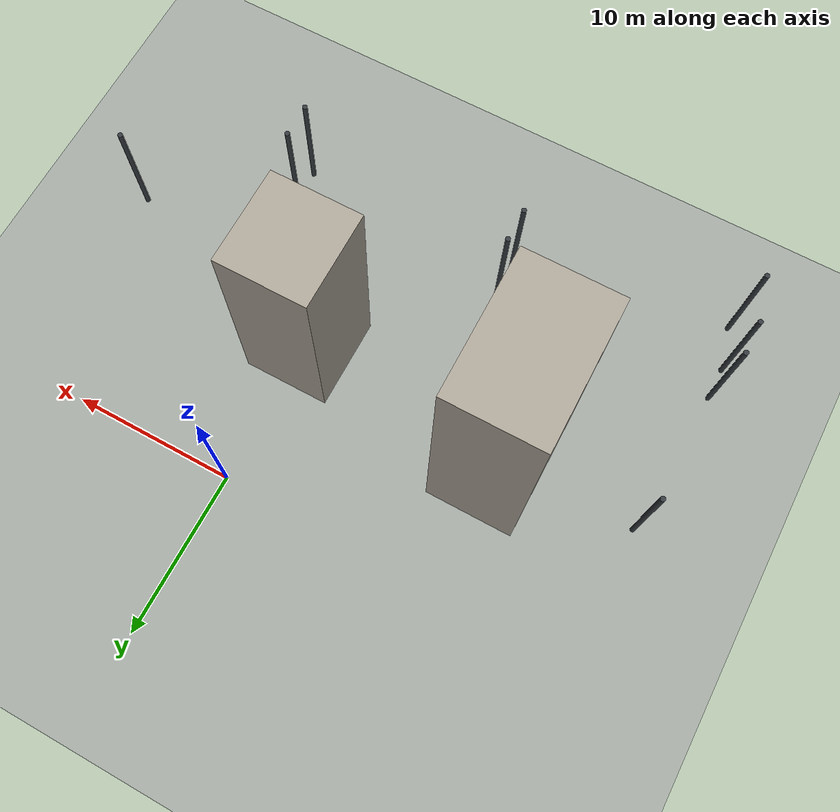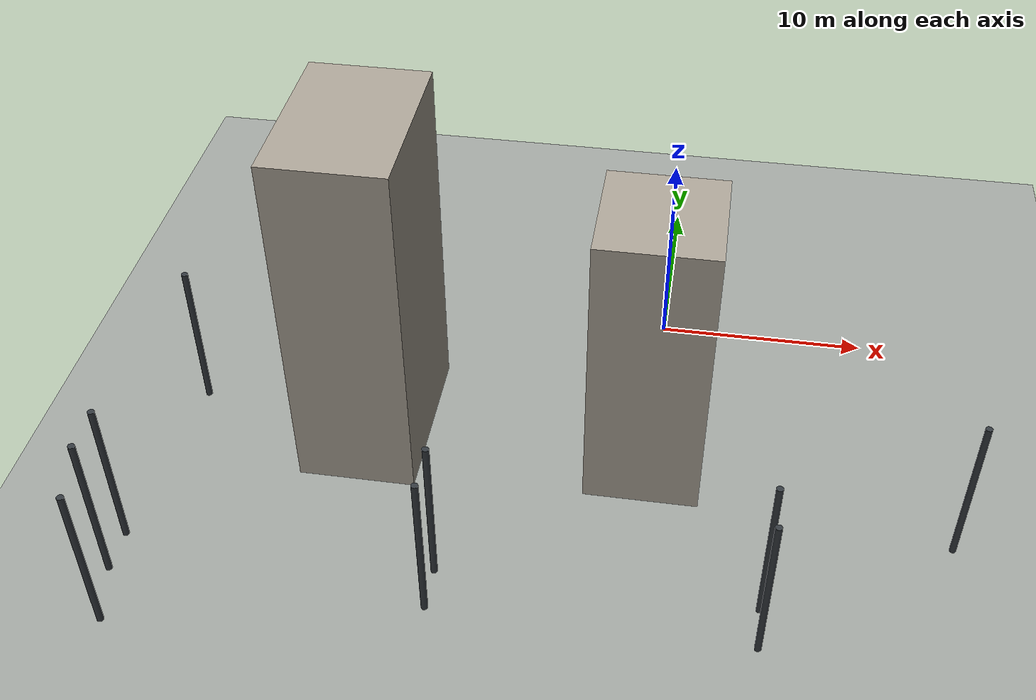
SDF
<sdf version="1.5">
 <world name="robocup_training_city_full_s7">
  <model name="training_ground">
   <static>true</static>
   <link name="link">
    <collision name="collision">
     <geometry><plane><normal>0 0 1</normal><size>1000 1000</size></plane></geometry>
     <surface><friction><ode><mu>1</mu><mu2>1</mu2></ode></friction></surface>
    </collision>
    <visual name="visual">
     <geometry><plane><normal>0 0 1</normal><size>1000 1000</size></plane></geometry>
     <material>
      <ambient>0.279 0.288 0.279 1</ambient>
      <diffuse>0.62 0.64 0.62 1</diffuse>
      <specular>0.04 0.04 0.04 1</specular>
      <emissive>0 0 0 1</emissive>
     </material>
     <cast_shadows>false</cast_shadows>
    </visual>
   </link>
  </model>
  <model name="building_1168">
   <static>true</static>
   <pose>-0.093679 -9.409852 0 0 0 0</pose>
   <link name="link">
    <pose>0 0 7.013082 0 0 0</pose>
    <collision name="collision">
     <geometry><box><size>5.256418 5.571161 14.026164</size></box></geometry>
     <surface><friction><ode><mu>1</mu><mu2>1</mu2></ode></friction></surface>
    </collision>
    <visual name="visual">
     <geometry><box><size>5.256418 5.571161 14.026164</size></box></geometry>
     <material>
      <ambient>0.297 0.2835 0.261 1</ambient>
      <diffuse>0.66 0.63 0.58 1</diffuse>
      <specular>0.04 0.04 0.04 1</specular>
      <emissive>0 0 0 1</emissive>
     </material>
    </visual>
    <inertial>
     <mass>1</mass>
     <inertia>
      <ixx>18.980926</ixx>
      <ixy>0</ixy>
      <ixz>0</ixz>
      <iyy>18.696934</iyy>
      <iyz>0</iyz>
      <izz>4.88898</izz>
     </inertia>
    </inertial>
   </link>
  </model>
  <model name="building_1189">
   <static>true</static>
   <pose>-13.171839 -8.790246 0 0 0 0</pose>
   <link name="link">
    <pose>0 0 8.476714 0 0 0</pose>
    <collision name="collision">
     <geometry><box><size>5.405041 8.122158 16.953428</size></box></geometry>
     <surface><friction><ode><mu>1</mu><mu2>1</mu2></ode></friction></surface>
    </collision>
    <visual name="visual">
     <geometry><box><size>5.405041 8.122158 16.953428</size></box></geometry>
     <material>
      <ambient>0.297 0.2835 0.261 1</ambient>
      <diffuse>0.66 0.63 0.58 1</diffuse>
      <specular>0.04 0.04 0.04 1</specular>
      <emissive>0 0 0 1</emissive>
     </material>
    </visual>
    <inertial>
     <mass>1</mass>
     <inertia>
      <ixx>29.449014</ixx>
      <ixy>0</ixy>
      <ixz>0</ixz>
      <iyy>26.386099</iyy>
      <iyz>0</iyz>
      <izz>7.931993</izz>
     </inertia>
    </inertial>
   </link>
  </model>
  <model name="lamp_post_2532">
   <static>true</static>
   <pose>-21.8 -22.355631 0 0 0 0</pose>
   <link name="link">
    <pose>0 0 3.75 0 0 0</pose>
    <collision name="collision">
     <geometry><cylinder><radius>0.15</radius><length>7.5</length></cylinder></geometry>
     <surface><friction><ode><mu>1</mu><mu2>1</mu2></ode></friction></surface>
    </collision>
    <visual name="visual">
     <geometry><cylinder><radius>0.15</radius><length>7.5</length></cylinder></geometry>
     <material>
      <ambient>0.09 0.099 0.108 1</ambient>
      <diffuse>0.2 0.22 0.24 1</diffuse>
      <specular>0.04 0.04 0.04 1</specular>
      <emissive>0 0 0 1</emissive>
     </material>
    </visual>
    <inertial>
     <mass>1</mass>
     <inertia>
      <ixx>4.693125</ixx>
      <ixy>0</ixy>
      <ixz>0</ixz>
      <iyy>4.693125</iyy>
      <iyz>0</iyz>
      <izz>0.01125</izz>
     </inertia>
    </inertial>
   </link>
  </model>
  <model name="lamp_post_2534">
   <static>true</static>
   <pose>-21.8 -8.355631 0 0 0 0</pose>
   <link name="link">
    <pose>0 0 3.75 0 0 0</pose>
    <collision name="collision">
     <geometry><cylinder><radius>0.15</radius><length>7.5</length></cylinder></geometry>
     <surface><friction><ode><mu>1</mu><mu2>1</mu2></ode></friction></surface>
    </collision>
    <visual name="visual">
     <geometry><cylinder><radius>0.15</radius><length>7.5</length></cylinder></geometry>
     <material>
      <ambient>0.09 0.099 0.108 1</ambient>
      <diffuse>0.2 0.22 0.24 1</diffuse>
      <specular>0.04 0.04 0.04 1</specular>
      <emissive>0 0 0 1</emissive>
     </material>
    </visual>
    <inertial>
     <mass>1</mass>
     <inertia>
      <ixx>4.693125</ixx>
      <ixy>0</ixy>
      <ixz>0</ixz>
      <iyy>4.693125</iyy>
      <iyz>0</iyz>
      <izz>0.01125</izz>
     </inertia>
    </inertial>
   </link>
  </model>
  <model name="lamp_post_2545">
   <static>true</static>
   <pose>13.8 -13.062914 0 0 0 0</pose>
   <link name="link">
    <pose>0 0 3.75 0 0 0</pose>
    <collision name="collision">
     <geometry><cylinder><radius>0.15</radius><length>7.5</length></cylinder></geometry>
     <surface><friction><ode><mu>1</mu><mu2>1</mu2></ode></friction></surface>
    </collision>
    <visual name="visual">
     <geometry><cylinder><radius>0.15</radius><length>7.5</length></cylinder></geometry>
     <material>
      <ambient>0.09 0.099 0.108 1</ambient>
      <diffuse>0.2 0.22 0.24 1</diffuse>
      <specular>0.04 0.04 0.04 1</specular>
      <emissive>0 0 0 1</emissive>
     </material>
    </visual>
    <inertial>
     <mass>1</mass>
     <inertia>
      <ixx>4.693125</ixx>
      <ixy>0</ixy>
      <ixz>0</ixz>
      <iyy>4.693125</iyy>
      <iyz>0</iyz>
      <izz>0.01125</izz>
     </inertia>
    </inertial>
   </link>
  </model>
  <model name="lamp_post_2617">
   <static>true</static>
   <pose>-22.491232 -19.666667 0 0 0 0</pose>
   <link name="link">
    <pose>0 0 3.75 0 0 0</pose>
    <collision name="collision">
     <geometry><cylinder><radius>0.15</radius><length>7.5</length></cylinder></geometry>
     <surface><friction><ode><mu>1</mu><mu2>1</mu2></ode></friction></surface>
    </collision>
    <visual name="visual">
     <geometry><cylinder><radius>0.15</radius><length>7.5</length></cylinder></geometry>
     <material>
      <ambient>0.09 0.099 0.108 1</ambient>
      <diffuse>0.2 0.22 0.24 1</diffuse>
      <specular>0.04 0.04 0.04 1</specular>
      <emissive>0 0 0 1</emissive>
     </material>
    </visual>
    <inertial>
     <mass>1</mass>
     <inertia>
      <ixx>4.693125</ixx>
      <ixy>0</ixy>
      <ixz>0</ixz>
      <iyy>4.693125</iyy>
      <iyz>0</iyz>
      <izz>0.01125</izz>
     </inertia>
    </inertial>
   </link>
  </model>
  <model name="lamp_post_2618">
   <static>true</static>
   <pose>-22.491232 -17.666667 0 0 0 0</pose>
   <link name="link">
    <pose>0 0 3.75 0 0 0</pose>
    <collision name="collision">
     <geometry><cylinder><radius>0.15</radius><length>7.5</length></cylinder></geometry>
     <surface><friction><ode><mu>1</mu><mu2>1</mu2></ode></friction></surface>
    </collision>
    <visual name="visual">
     <geometry><cylinder><radius>0.15</radius><length>7.5</length></cylinder></geometry>
     <material>
      <ambient>0.09 0.099 0.108 1</ambient>
      <diffuse>0.2 0.22 0.24 1</diffuse>
      <specular>0.04 0.04 0.04 1</specular>
      <emissive>0 0 0 1</emissive>
     </material>
    </visual>
    <inertial>
     <mass>1</mass>
     <inertia>
      <ixx>4.693125</ixx>
      <ixy>0</ixy>
      <ixz>0</ixz>
      <iyy>4.693125</iyy>
      <iyz>0</iyz>
      <izz>0.01125</izz>
     </inertia>
    </inertial>
   </link>
  </model>
  <model name="lamp_post_2619">
   <static>true</static>
   <pose>-8.491232 -19.666667 0 0 0 0</pose>
   <link name="link">
    <pose>0 0 3.75 0 0 0</pose>
    <collision name="collision">
     <geometry><cylinder><radius>0.15</radius><length>7.5</length></cylinder></geometry>
     <surface><friction><ode><mu>1</mu><mu2>1</mu2></ode></friction></surface>
    </collision>
    <visual name="visual">
     <geometry><cylinder><radius>0.15</radius><length>7.5</length></cylinder></geometry>
     <material>
      <ambient>0.09 0.099 0.108 1</ambient>
      <diffuse>0.2 0.22 0.24 1</diffuse>
      <specular>0.04 0.04 0.04 1</specular>
      <emissive>0 0 0 1</emissive>
     </material>
    </visual>
    <inertial>
     <mass>1</mass>
     <inertia>
      <ixx>4.693125</ixx>
      <ixy>0</ixy>
      <ixz>0</ixz>
      <iyy>4.693125</iyy>
      <iyz>0</iyz>
      <izz>0.01125</izz>
     </inertia>
    </inertial>
   </link>
  </model>
  <model name="lamp_post_2620">
   <static>true</static>
   <pose>-8.491232 -17.666667 0 0 0 0</pose>
   <link name="link">
    <pose>0 0 3.75 0 0 0</pose>
    <collision name="collision">
     <geometry><cylinder><radius>0.15</radius><length>7.5</length></cylinder></geometry>
     <surface><friction><ode><mu>1</mu><mu2>1</mu2></ode></friction></surface>
    </collision>
    <visual name="visual">
     <geometry><cylinder><radius>0.15</radius><length>7.5</length></cylinder></geometry>
     <material>
      <ambient>0.09 0.099 0.108 1</ambient>
      <diffuse>0.2 0.22 0.24 1</diffuse>
      <specular>0.04 0.04 0.04 1</specular>
      <emissive>0 0 0 1</emissive>
     </material>
    </visual>
    <inertial>
     <mass>1</mass>
     <inertia>
      <ixx>4.693125</ixx>
      <ixy>0</ixy>
      <ixz>0</ixz>
      <iyy>4.693125</iyy>
      <iyz>0</iyz>
      <izz>0.01125</izz>
     </inertia>
    </inertial>
   </link>
  </model>
  <model name="lamp_post_2621">
   <static>true</static>
   <pose>5.508768 -19.666667 0 0 0 0</pose>
   <link name="link">
    <pose>0 0 3.75 0 0 0</pose>
    <collision name="collision">
     <geometry><cylinder><radius>0.15</radius><length>7.5</length></cylinder></geometry>
     <surface><friction><ode><mu>1</mu><mu2>1</mu2></ode></friction></surface>
    </collision>
    <visual name="visual">
     <geometry><cylinder><radius>0.15</radius><length>7.5</length></cylinder></geometry>
     <material>
      <ambient>0.09 0.099 0.108 1</ambient>
      <diffuse>0.2 0.22 0.24 1</diffuse>
      <specular>0.04 0.04 0.04 1</specular>
      <emissive>0 0 0 1</emissive>
     </material>
    </visual>
    <inertial>
     <mass>1</mass>
     <inertia>
      <ixx>4.693125</ixx>
      <ixy>0</ixy>
      <ixz>0</ixz>
      <iyy>4.693125</iyy>
      <iyz>0</iyz>
      <izz>0.01125</izz>
     </inertia>
    </inertial>
   </link>
  </model>
  <model name="lamp_post_2622">
   <static>true</static>
   <pose>5.508768 -17.666667 0 0 0 0</pose>
   <link name="link">
    <pose>0 0 3.75 0 0 0</pose>
    <collision name="collision">
     <geometry><cylinder><radius>0.15</radius><length>7.5</length></cylinder></geometry>
     <surface><friction><ode><mu>1</mu><mu2>1</mu2></ode></friction></surface>
    </collision>
    <visual name="visual">
     <geometry><cylinder><radius>0.15</radius><length>7.5</length></cylinder></geometry>
     <material>
      <ambient>0.09 0.099 0.108 1</ambient>
      <diffuse>0.2 0.22 0.24 1</diffuse>
      <specular>0.04 0.04 0.04 1</specular>
      <emissive>0 0 0 1</emissive>
     </material>
    </visual>
    <inertial>
     <mass>1</mass>
     <inertia>
      <ixx>4.693125</ixx>
      <ixy>0</ixy>
      <ixz>0</ixz>
      <iyy>4.693125</iyy>
      <iyz>0</iyz>
      <izz>0.01125</izz>
     </inertia>
    </inertial>
   </link>
  </model>
 </world>
</sdf>
